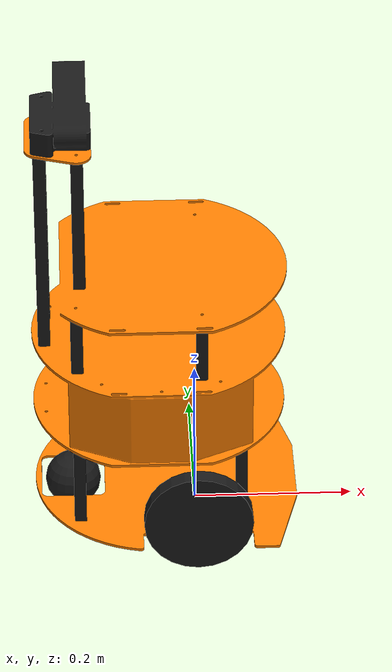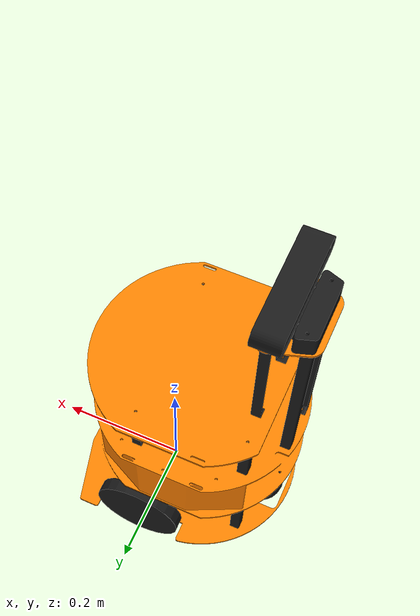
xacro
<?xml version="1.0"?>

<robot name="labbot" xmlns:xacro="http://www.ros.org/wiki/xacro">

    <xacro:include filename="labbot_properties.xacro" />
    <xacro:include filename="labbot_macros.xacro" />

    <xacro:property name="wheel_diameter" value="0.13575" />
    <xacro:property name="wheel_width" value="0.02" />
    <xacro:property name="wheel_axle" value="0.27375" />

    <xacro:property name="swivel_diameter" value="0.035" />

    <xacro:wheel_link_macro
        prefix="wheel_left"
        diameter="${wheel_diameter}"
        width="${wheel_width}"
        material="black" />

    <xacro:wheel_link_macro
        prefix="wheel_right"
        diameter="${wheel_diameter}"
        width="${wheel_width}"
        material="black" />

    <link name="base_footprint" />

    <link name="base_link">
        <visual>
            <geometry>
                <mesh filename="package://labbot_package/urdf/meshes/labbot_assembly_main_low.stl" scale="0.001 0.001 0.001" />
            </geometry>
            <origin xyz="0 0 0" rpy="0 0 0" />
            <material name="orange" />
        </visual>
    </link>

    <link name="details_link">
        <visual>
            <geometry>
                <mesh filename="package://labbot_package/urdf/meshes/labbot_assembly_detail_low.stl" scale="0.001 0.001 0.001" />
            </geometry>
            <origin xyz="0 0 0" rpy="0 0 0" />
            <material name="black" />
        </visual>
    </link>

    <link name="swivel_link">
        <visual>
            <geometry>
                <sphere radius="${swivel_diameter}" />
            </geometry>
            <origin xyz="0 0 0" rpy="0 0 0" />
            <material name="black" />
        </visual>
    </link>

    <link name="camera_link"> </link>

    <link name="scan_link" />

    <joint name="base_joint" type="fixed">
        <parent link="base_footprint" />
        <child link="base_link" />
        <origin xyz="0 0 ${wheel_diameter / 2.0}" rpy="0 0 0" />
    </joint>

    <joint name="details_joint" type="fixed">
        <parent link="base_link" />
        <child link="details_link" />
        <origin xyz="0 0 0" rpy="0 0 0" />
    </joint>

    <joint name="motor_left" type="continuous">
        <parent link="base_link" />
        <child link="wheel_left_link" />
        <origin xyz="0 ${-wheel_axle / 2.0} 0" rpy="0 0 0" />
        <axis xyz="0 1 0" />
    </joint>

    <joint name="motor_right" type="continuous">
        <parent link="base_link" />
        <child link="wheel_right_link" />
        <origin xyz="0 ${wheel_axle / 2.0} 0" rpy="0 0 0" />
        <axis xyz="0 1 0" />
    </joint>

    <joint name="base_swivel_joint" type="fixed">
        <parent link="base_link" />
        <child link="swivel_link" />
        <origin xyz="-0.155 0 ${-wheel_diameter / 2.0 + swivel_diameter}" rpy="0 0 0" />
    </joint>

    <joint name="camera_joint" type="fixed">
        <parent link="base_link" />
        <child link="camera_link" />
        <origin xyz="-0.160 0 0.525" rpy="0 0 ${2.5 * pi / 180}" />
    </joint>

    <joint name="scan_joint" type="fixed">
        <parent link="base_link" />
        <child link="scan_link" />
        <origin xyz="-0.160 0 0.525" rpy="0 0 ${2.5 * pi / 180.0}" />
    </joint>

</robot>

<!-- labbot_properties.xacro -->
<robot xmlns:xacro="http://www.ros.org/wiki/xacro">

    <material name="orange"> <color rgba="1 0.5 0 1" /> </material>
    <material name="black"> <color rgba="0.1 0.1 0.1 1" /> </material>
    <material name="white"> <color rgba="1 1 1 1" /> </material>

</robot>

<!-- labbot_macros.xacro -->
<robot xmlns:xacro="http://www.ros.org/wiki/xacro">

    <xacro:macro name="wheel_link_macro" params="prefix diameter width material">
        <link name="${prefix}_link">
            <visual>
                <geometry>
                    <cylinder radius="${diameter / 2.0}" length="${width}" />
                </geometry>
                <origin xyz="0 0 0" rpy="${pi / 2.0} 0 0" />
                <material name="${material}" />
            </visual>
        </link>
    </xacro:macro>

</robot>
